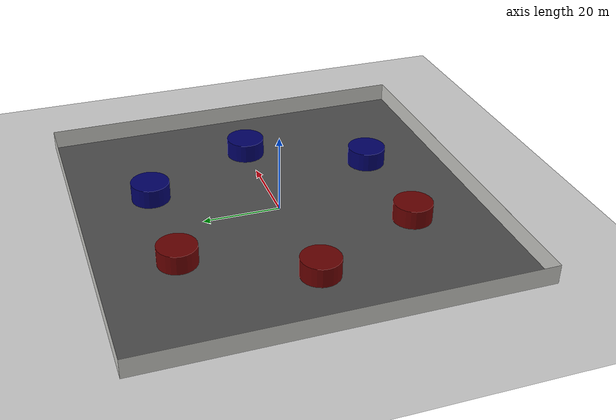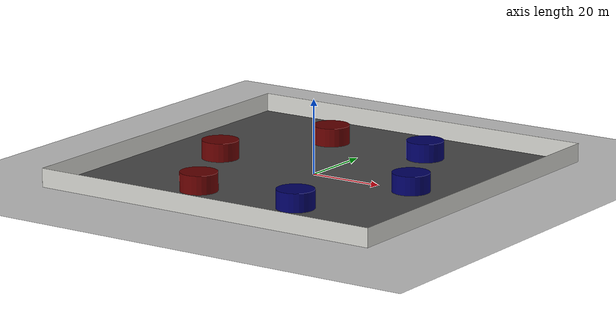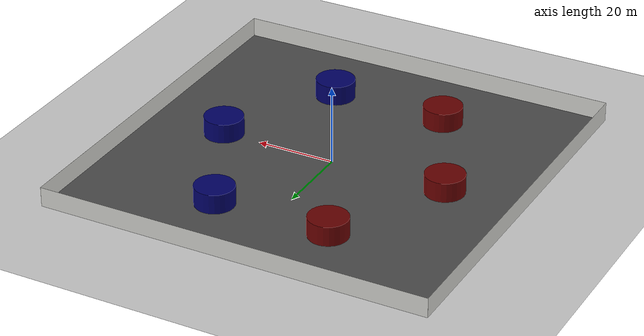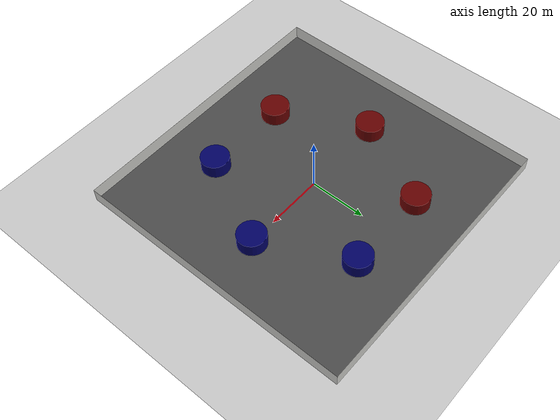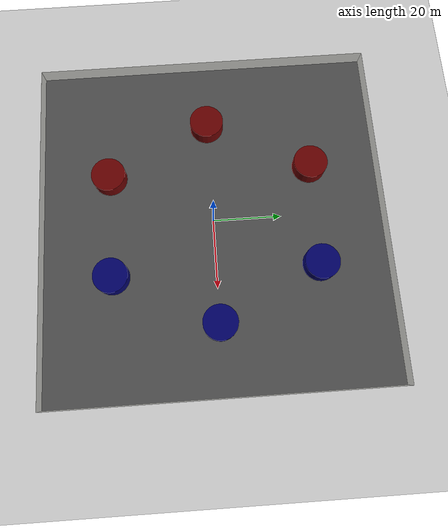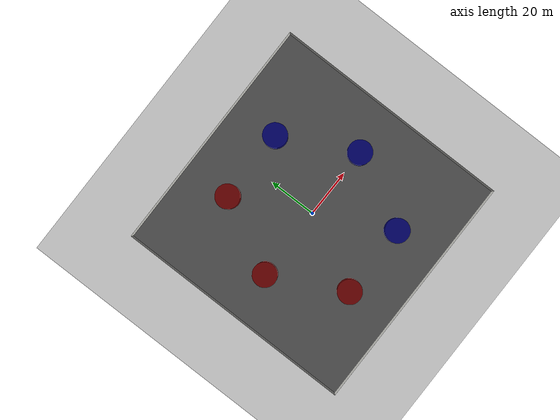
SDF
<sdf version="1.6">
 <world name="default">
  <light name="sun" type="directional">
   <pose>0 0 10 0 -0 0</pose>
   <diffuse>0.8 0.8 0.8 1</diffuse>
   <specular>0.1 0.1 0.1 1</specular>
   <attenuation>
    <range>1000</range>
    <constant>0.9</constant>
    <linear>0.01</linear>
    <quadratic>0.001</quadratic>
   </attenuation>
   <direction>-0.5 0.5 -1</direction>
  </light>
  <model name="ground_plane">
   <static>1</static>
   <link name="link">
    <collision name="collision">
     <geometry><plane><normal>0 0 1</normal><size>100 100</size></plane></geometry>
     <surface><friction><ode><mu>100</mu><mu2>50</mu2></ode></friction></surface>
    </collision>
    <visual name="visual">
     <cast_shadows>0</cast_shadows>
     <geometry><plane><normal>0 0 1</normal><size>100 100</size></plane></geometry>
     <material>
      <script><uri>file://media/materials/scripts/gazebo.material</uri><name>Gazebo/Grey</name></script>
     </material>
    </visual>
   </link>
  </model>
  <gravity>0 0 -9.8</gravity>
  <magnetic_field>6e-06 2.3e-05 -4.2e-05</magnetic_field>
  <atmosphere type="adiabatic"/>
  <physics name="default_physics" default="0" type="ode">
   <max_step_size>0.005</max_step_size>
   <real_time_factor>1</real_time_factor>
   <real_time_update_rate>1000</real_time_update_rate>
  </physics>
  <scene><ambient>0.4 0.4 0.4 1</ambient><background>0.7 0.7 0.7 1</background><shadows>1</shadows></scene>
  <spherical_coordinates>
   <surface_model>EARTH_WGS84</surface_model>
   <latitude_deg>0</latitude_deg>
   <longitude_deg>0</longitude_deg>
   <elevation>0</elevation>
   <heading_deg>0</heading_deg>
  </spherical_coordinates>
  <model name="1907082Y2B_plane">
   <link name="link">
    <inertial>
     <mass>1</mass>
     <inertia><ixx>1</ixx><ixy>0</ixy><ixz>0</ixz><iyy>1</iyy><iyz>0</iyz><izz>1</izz></inertia>
    </inertial>
    <visual name="visual">
     <cast_shadows>0</cast_shadows>
     <geometry><box><size>100 100 0.01</size></box></geometry>
     <material>
      <script>
       <uri>model://asphalt_plane/materials/scripts</uri>
       <uri>model://asphalt_plane/materials/textures</uri>
       <name>vrc/asphalt</name>
      </script>
      <ambient>0.5 0.5 0.5 1</ambient>
      <diffuse>0.5 0.5 0.5 1</diffuse>
      <specular>0.2 0.2 0.2 1</specular>
      <emissive>0 0 0 1</emissive>
      <shader type="vertex"><normal_map>__default__</normal_map></shader>
     </material>
    </visual>
    <collision name="collision">
     <geometry><box><size>100 100 0.01</size></box></geometry>
     <surface>
      <friction>
       <ode><mu>1</mu><mu2>1</mu2><fdir1>0 0 0</fdir1><slip1>0</slip1><slip2>0</slip2></ode>
       <torsional>
        <coefficient>1</coefficient>
        <patch_radius>0</patch_radius>
        <surface_radius>0</surface_radius>
        <use_patch_radius>1</use_patch_radius>
        <ode><slip>0</slip></ode>
       </torsional>
      </friction>
      <bounce><restitution_coefficient>0</restitution_coefficient><threshold>1e+06</threshold></bounce>
      <contact>
       <collide_without_contact>0</collide_without_contact>
       <collide_without_contact_bitmask>1</collide_without_contact_bitmask>
       <collide_bitmask>1</collide_bitmask>
       <ode>
        <soft_cfm>0</soft_cfm>
        <soft_erp>0.2</soft_erp>
        <kp>1e+13</kp>
        <kd>1</kd>
        <max_vel>0.01</max_vel>
        <min_depth>0</min_depth>
       </ode>
       <bullet>
        <split_impulse>1</split_impulse>
        <split_impulse_penetration_threshold>-0.01</split_impulse_penetration_threshold>
        <soft_cfm>0</soft_cfm>
        <soft_erp>0.2</soft_erp>
        <kp>1e+13</kp>
        <kd>1</kd>
       </bullet>
      </contact>
     </surface>
    </collision>
   </link>
   <static>1</static>
   <pose>0 0 0.01 0 -0 0</pose>
  </model>
  <model name="1907082Y2B_wall">
   <link name="Wall_11">
    <collision name="Wall_11_Collision">
     <geometry><box><size>100.01 0.01 5</size></box></geometry>
     <pose>0 0 2.5 0 -0 0</pose>
    </collision>
    <visual name="Wall_11_Visual">
     <pose>0 0 2.5 0 -0 0</pose>
     <geometry><box><size>100.01 0.01 5</size></box></geometry>
     <material>
      <script><uri>file://media/materials/scripts/gazebo.material</uri><name>Gazebo/CeilingTiled</name></script>
      <ambient>1 1 1 1</ambient>
     </material>
    </visual>
    <pose>50 2e-06 0 0 0 -1.5708</pose>
   </link>
   <link name="Wall_5">
    <collision name="Wall_5_Collision">
     <geometry><box><size>100.01 0.01 5</size></box></geometry>
     <pose>0 0 2.5 0 -0 0</pose>
    </collision>
    <visual name="Wall_5_Visual">
     <pose>0 0 2.5 0 -0 0</pose>
     <geometry><box><size>100.01 0.01 5</size></box></geometry>
     <material>
      <script><uri>file://media/materials/scripts/gazebo.material</uri><name>Gazebo/CeilingTiled</name></script>
      <ambient>1 1 1 1</ambient>
     </material>
    </visual>
    <pose>1e-06 -50 0 0 -0 0</pose>
   </link>
   <link name="Wall_7">
    <collision name="Wall_7_Collision">
     <geometry><box><size>100.01 0.01 5</size></box></geometry>
     <pose>0 0 2.5 0 -0 0</pose>
    </collision>
    <visual name="Wall_7_Visual">
     <pose>0 0 2.5 0 -0 0</pose>
     <geometry><box><size>100.01 0.01 5</size></box></geometry>
     <material>
      <script><uri>file://media/materials/scripts/gazebo.material</uri><name>Gazebo/CeilingTiled</name></script>
      <ambient>1 1 1 1</ambient>
     </material>
    </visual>
    <pose>-50 2e-06 0 0 -0 1.5708</pose>
   </link>
   <link name="Wall_9">
    <collision name="Wall_9_Collision">
     <geometry><box><size>100.01 0.01 5</size></box></geometry>
     <pose>0 0 2.5 0 -0 0</pose>
    </collision>
    <visual name="Wall_9_Visual">
     <pose>0 0 2.5 0 -0 0</pose>
     <geometry><box><size>100.01 0.01 5</size></box></geometry>
     <material>
      <script><uri>file://media/materials/scripts/gazebo.material</uri><name>Gazebo/CeilingTiled</name></script>
      <ambient>1 1 1 1</ambient>
     </material>
    </visual>
    <pose>1e-06 50 0 0 -0 0</pose>
   </link>
   <static>1</static>
  </model>
  <model name="1907082Y2B_obstacle_red_4">
   <link name="link">
    <inertial>
     <mass>1</mass>
     <inertia><ixx>0.145833</ixx><ixy>0</ixy><ixz>0</ixz><iyy>0.145833</iyy><iyz>0</iyz><izz>0.125</izz></inertia>
    </inertial>
    <visual name="visual">
     <geometry><cylinder><radius>5</radius><length>5</length></cylinder></geometry>
     <material>
      <script><name>Gazebo/Grey</name><uri>file://media/materials/scripts/gazebo.material</uri></script>
      <ambient>0.4 0 0 1</ambient>
      <diffuse>0.4 0 0 1</diffuse>
      <specular>0 0 0 1</specular>
      <emissive>0.5 0 0 1</emissive>
      <shader type="vertex"><normal_map>__default__</normal_map></shader>
     </material>
    </visual>
    <collision name="collision">
     <geometry><cylinder><radius>5</radius><length>5</length></cylinder></geometry>
     <surface>
      <friction>
       <ode><mu>1</mu><mu2>1</mu2><fdir1>0 0 0</fdir1><slip1>0</slip1><slip2>0</slip2></ode>
       <torsional>
        <coefficient>1</coefficient>
        <patch_radius>0</patch_radius>
        <surface_radius>0</surface_radius>
        <use_patch_radius>1</use_patch_radius>
        <ode><slip>0</slip></ode>
       </torsional>
      </friction>
      <bounce><restitution_coefficient>0</restitution_coefficient><threshold>1e+06</threshold></bounce>
      <contact>
       <collide_without_contact>0</collide_without_contact>
       <collide_without_contact_bitmask>1</collide_without_contact_bitmask>
       <collide_bitmask>1</collide_bitmask>
       <ode>
        <soft_cfm>0</soft_cfm>
        <soft_erp>0.2</soft_erp>
        <kp>1e+13</kp>
        <kd>1</kd>
        <max_vel>0.01</max_vel>
        <min_depth>0</min_depth>
       </ode>
       <bullet>
        <split_impulse>1</split_impulse>
        <split_impulse_penetration_threshold>-0.01</split_impulse_penetration_threshold>
        <soft_cfm>0</soft_cfm>
        <soft_erp>0.2</soft_erp>
        <kp>1e+13</kp>
        <kd>1</kd>
       </bullet>
      </contact>
     </surface>
    </collision>
   </link>
   <static>0</static>
   <pose>-30.0053 -0.002519 2.51499 -5e-06 -0 -2.8e-05</pose>
  </model>
  <model name="1907082Y2B_obstacle_red_4_clone">
   <link name="link">
    <inertial>
     <mass>1</mass>
     <inertia><ixx>0.145833</ixx><ixy>0</ixy><ixz>0</ixz><iyy>0.145833</iyy><iyz>0</iyz><izz>0.125</izz></inertia>
    </inertial>
    <visual name="visual">
     <geometry><cylinder><radius>5</radius><length>5</length></cylinder></geometry>
     <material>
      <script><name>Gazebo/Grey</name><uri>file://media/materials/scripts/gazebo.material</uri></script>
      <ambient>0.4 0 0 1</ambient>
      <diffuse>0.4 0 0 1</diffuse>
      <specular>0 0 0 1</specular>
      <emissive>0.5 0 0 1</emissive>
      <shader type="vertex"><normal_map>__default__</normal_map></shader>
     </material>
    </visual>
    <collision name="collision">
     <geometry><cylinder><radius>5</radius><length>5</length></cylinder></geometry>
     <surface>
      <friction>
       <ode><mu>1</mu><mu2>1</mu2><fdir1>0 0 0</fdir1><slip1>0</slip1><slip2>0</slip2></ode>
       <torsional>
        <coefficient>1</coefficient>
        <patch_radius>0</patch_radius>
        <surface_radius>0</surface_radius>
        <use_patch_radius>1</use_patch_radius>
        <ode><slip>0</slip></ode>
       </torsional>
      </friction>
      <bounce><restitution_coefficient>0</restitution_coefficient><threshold>1e+06</threshold></bounce>
      <contact>
       <collide_without_contact>0</collide_without_contact>
       <collide_without_contact_bitmask>1</collide_without_contact_bitmask>
       <collide_bitmask>1</collide_bitmask>
       <ode>
        <soft_cfm>0</soft_cfm>
        <soft_erp>0.2</soft_erp>
        <kp>1e+13</kp>
        <kd>1</kd>
        <max_vel>0.01</max_vel>
        <min_depth>0</min_depth>
       </ode>
       <bullet>
        <split_impulse>1</split_impulse>
        <split_impulse_penetration_threshold>-0.01</split_impulse_penetration_threshold>
        <soft_cfm>0</soft_cfm>
        <soft_erp>0.2</soft_erp>
        <kp>1e+13</kp>
        <kd>1</kd>
       </bullet>
      </contact>
     </surface>
    </collision>
   </link>
   <static>0</static>
   <pose>-15 30 2.5 0 -0 0</pose>
  </model>
  <model name="1907082Y2B_obstacle_red_4_clone_0">
   <link name="link">
    <inertial>
     <mass>1</mass>
     <inertia><ixx>0.145833</ixx><ixy>0</ixy><ixz>0</ixz><iyy>0.145833</iyy><iyz>0</iyz><izz>0.125</izz></inertia>
    </inertial>
    <visual name="visual">
     <geometry><cylinder><radius>5</radius><length>5</length></cylinder></geometry>
     <material>
      <script><name>Gazebo/Grey</name><uri>file://media/materials/scripts/gazebo.material</uri></script>
      <ambient>0.4 0 0 1</ambient>
      <diffuse>0.4 0 0 1</diffuse>
      <specular>0 0 0 1</specular>
      <emissive>0.5 0 0 1</emissive>
      <shader type="vertex"><normal_map>__default__</normal_map></shader>
     </material>
    </visual>
    <collision name="collision">
     <geometry><cylinder><radius>5</radius><length>5</length></cylinder></geometry>
     <surface>
      <friction>
       <ode><mu>1</mu><mu2>1</mu2><fdir1>0 0 0</fdir1><slip1>0</slip1><slip2>0</slip2></ode>
       <torsional>
        <coefficient>1</coefficient>
        <patch_radius>0</patch_radius>
        <surface_radius>0</surface_radius>
        <use_patch_radius>1</use_patch_radius>
        <ode><slip>0</slip></ode>
       </torsional>
      </friction>
      <bounce><restitution_coefficient>0</restitution_coefficient><threshold>1e+06</threshold></bounce>
      <contact>
       <collide_without_contact>0</collide_without_contact>
       <collide_without_contact_bitmask>1</collide_without_contact_bitmask>
       <collide_bitmask>1</collide_bitmask>
       <ode>
        <soft_cfm>0</soft_cfm>
        <soft_erp>0.2</soft_erp>
        <kp>1e+13</kp>
        <kd>1</kd>
        <max_vel>0.01</max_vel>
        <min_depth>0</min_depth>
       </ode>
       <bullet>
        <split_impulse>1</split_impulse>
        <split_impulse_penetration_threshold>-0.01</split_impulse_penetration_threshold>
        <soft_cfm>0</soft_cfm>
        <soft_erp>0.2</soft_erp>
        <kp>1e+13</kp>
        <kd>1</kd>
       </bullet>
      </contact>
     </surface>
    </collision>
   </link>
   <static>0</static>
   <pose>-15 -30 2.5 0 -0 0</pose>
  </model>
  <model name="1907082Y2B_obstacle_blue">
   <link name="link">
    <inertial>
     <mass>1</mass>
     <inertia><ixx>0.145833</ixx><ixy>0</ixy><ixz>0</ixz><iyy>0.145833</iyy><iyz>0</iyz><izz>0.125</izz></inertia>
    </inertial>
    <visual name="visual">
     <geometry><cylinder><radius>5</radius><length>5</length></cylinder></geometry>
     <material>
      <script><name>Gazebo/Grey</name><uri>file://media/materials/scripts/gazebo.material</uri></script>
      <ambient>0 0 0.4 1</ambient>
      <diffuse>0 0 0.4 1</diffuse>
      <specular>0 0 0 1</specular>
      <emissive>0 0 0.5 1</emissive>
      <shader type="vertex"><normal_map>__default__</normal_map></shader>
     </material>
    </visual>
    <collision name="collision">
     <geometry><cylinder><radius>5</radius><length>5</length></cylinder></geometry>
     <surface>
      <friction>
       <ode><mu>1</mu><mu2>1</mu2><fdir1>0 0 0</fdir1><slip1>0</slip1><slip2>0</slip2></ode>
       <torsional>
        <coefficient>1</coefficient>
        <patch_radius>0</patch_radius>
        <surface_radius>0</surface_radius>
        <use_patch_radius>1</use_patch_radius>
        <ode><slip>0</slip></ode>
       </torsional>
      </friction>
      <bounce><restitution_coefficient>0</restitution_coefficient><threshold>1e+06</threshold></bounce>
      <contact>
       <collide_without_contact>0</collide_without_contact>
       <collide_without_contact_bitmask>1</collide_without_contact_bitmask>
       <collide_bitmask>1</collide_bitmask>
       <ode>
        <soft_cfm>0</soft_cfm>
        <soft_erp>0.2</soft_erp>
        <kp>1e+13</kp>
        <kd>1</kd>
        <max_vel>0.01</max_vel>
        <min_depth>0</min_depth>
       </ode>
       <bullet>
        <split_impulse>1</split_impulse>
        <split_impulse_penetration_threshold>-0.01</split_impulse_penetration_threshold>
        <soft_cfm>0</soft_cfm>
        <soft_erp>0.2</soft_erp>
        <kp>1e+13</kp>
        <kd>1</kd>
       </bullet>
      </contact>
     </surface>
    </collision>
   </link>
   <static>0</static>
   <pose>29.9961 0.001887 2.51499 0 0 -0.000165</pose>
  </model>
  <model name="1907082Y2B_obstacle_blue_clone">
   <link name="link">
    <inertial>
     <mass>1</mass>
     <inertia><ixx>0.145833</ixx><ixy>0</ixy><ixz>0</ixz><iyy>0.145833</iyy><iyz>0</iyz><izz>0.125</izz></inertia>
    </inertial>
    <visual name="visual">
     <geometry><cylinder><radius>5</radius><length>5</length></cylinder></geometry>
     <material>
      <script><name>Gazebo/Grey</name><uri>file://media/materials/scripts/gazebo.material</uri></script>
      <ambient>0 0 0.4 1</ambient>
      <diffuse>0 0 0.4 1</diffuse>
      <specular>0 0 0 1</specular>
      <emissive>0 0 0.5 1</emissive>
      <shader type="vertex"><normal_map>__default__</normal_map></shader>
     </material>
    </visual>
    <collision name="collision">
     <geometry><cylinder><radius>5</radius><length>5</length></cylinder></geometry>
     <surface>
      <friction>
       <ode><mu>1</mu><mu2>1</mu2><fdir1>0 0 0</fdir1><slip1>0</slip1><slip2>0</slip2></ode>
       <torsional>
        <coefficient>1</coefficient>
        <patch_radius>0</patch_radius>
        <surface_radius>0</surface_radius>
        <use_patch_radius>1</use_patch_radius>
        <ode><slip>0</slip></ode>
       </torsional>
      </friction>
      <bounce><restitution_coefficient>0</restitution_coefficient><threshold>1e+06</threshold></bounce>
      <contact>
       <collide_without_contact>0</collide_without_contact>
       <collide_without_contact_bitmask>1</collide_without_contact_bitmask>
       <collide_bitmask>1</collide_bitmask>
       <ode>
        <soft_cfm>0</soft_cfm>
        <soft_erp>0.2</soft_erp>
        <kp>1e+13</kp>
        <kd>1</kd>
        <max_vel>0.01</max_vel>
        <min_depth>0</min_depth>
       </ode>
       <bullet>
        <split_impulse>1</split_impulse>
        <split_impulse_penetration_threshold>-0.01</split_impulse_penetration_threshold>
        <soft_cfm>0</soft_cfm>
        <soft_erp>0.2</soft_erp>
        <kp>1e+13</kp>
        <kd>1</kd>
       </bullet>
      </contact>
     </surface>
    </collision>
   </link>
   <static>0</static>
   <pose>15 30 2.5 0 -0 0</pose>
  </model>
  <model name="1907082Y2B_obstacle_blue_clone_0">
   <link name="link">
    <inertial>
     <mass>1</mass>
     <inertia><ixx>0.145833</ixx><ixy>0</ixy><ixz>0</ixz><iyy>0.145833</iyy><iyz>0</iyz><izz>0.125</izz></inertia>
    </inertial>
    <visual name="visual">
     <geometry><cylinder><radius>5</radius><length>5</length></cylinder></geometry>
     <material>
      <script><name>Gazebo/Grey</name><uri>file://media/materials/scripts/gazebo.material</uri></script>
      <ambient>0 0 0.4 1</ambient>
      <diffuse>0 0 0.4 1</diffuse>
      <specular>0 0 0 1</specular>
      <emissive>0 0 0.5 1</emissive>
      <shader type="vertex"><normal_map>__default__</normal_map></shader>
     </material>
    </visual>
    <collision name="collision">
     <geometry><cylinder><radius>5</radius><length>5</length></cylinder></geometry>
     <surface>
      <friction>
       <ode><mu>1</mu><mu2>1</mu2><fdir1>0 0 0</fdir1><slip1>0</slip1><slip2>0</slip2></ode>
       <torsional>
        <coefficient>1</coefficient>
        <patch_radius>0</patch_radius>
        <surface_radius>0</surface_radius>
        <use_patch_radius>1</use_patch_radius>
        <ode><slip>0</slip></ode>
       </torsional>
      </friction>
      <bounce><restitution_coefficient>0</restitution_coefficient><threshold>1e+06</threshold></bounce>
      <contact>
       <collide_without_contact>0</collide_without_contact>
       <collide_without_contact_bitmask>1</collide_without_contact_bitmask>
       <collide_bitmask>1</collide_bitmask>
       <ode>
        <soft_cfm>0</soft_cfm>
        <soft_erp>0.2</soft_erp>
        <kp>1e+13</kp>
        <kd>1</kd>
        <max_vel>0.01</max_vel>
        <min_depth>0</min_depth>
       </ode>
       <bullet>
        <split_impulse>1</split_impulse>
        <split_impulse_penetration_threshold>-0.01</split_impulse_penetration_threshold>
        <soft_cfm>0</soft_cfm>
        <soft_erp>0.2</soft_erp>
        <kp>1e+13</kp>
        <kd>1</kd>
       </bullet>
      </contact>
     </surface>
    </collision>
   </link>
   <static>0</static>
   <pose>15 -30 2.5 0 -0 0</pose>
  </model>
 </world>
</sdf>
